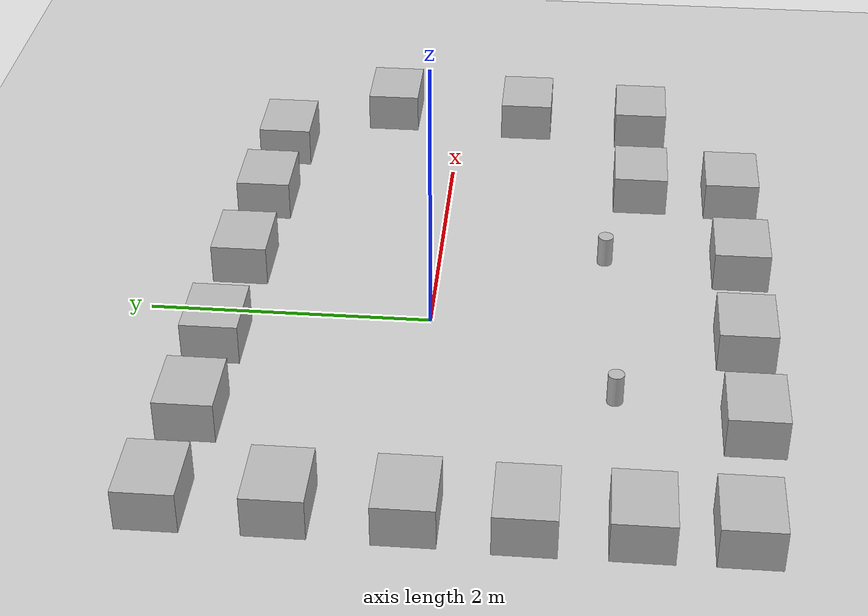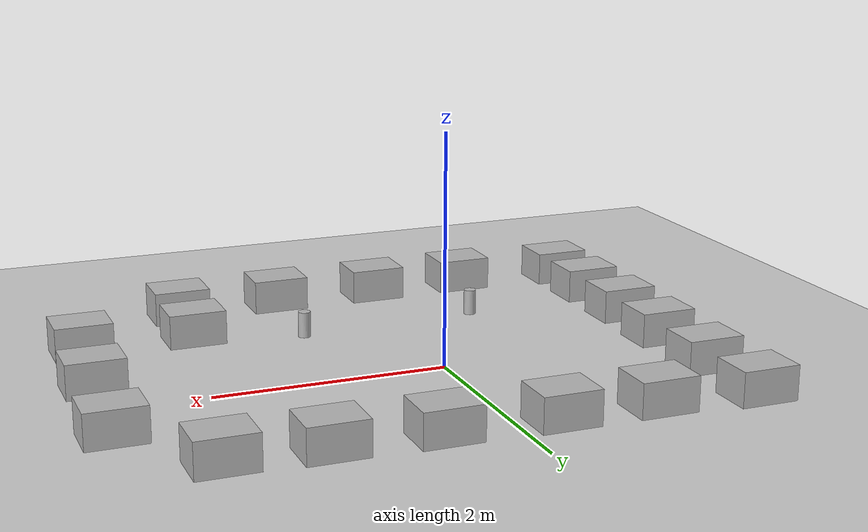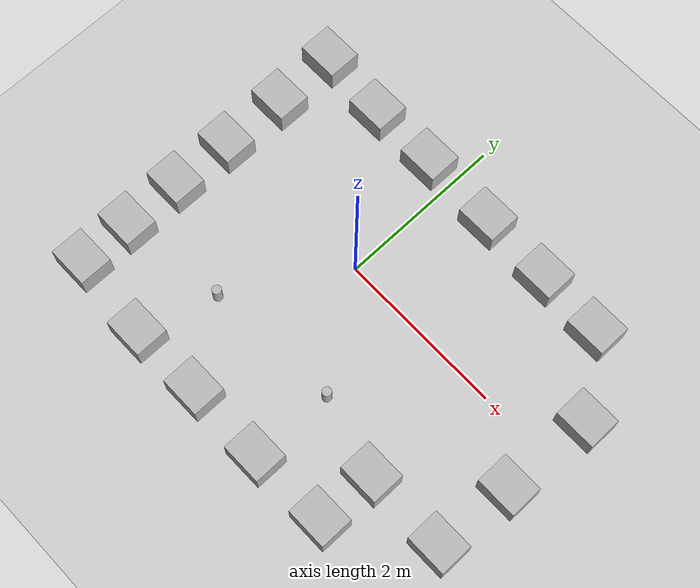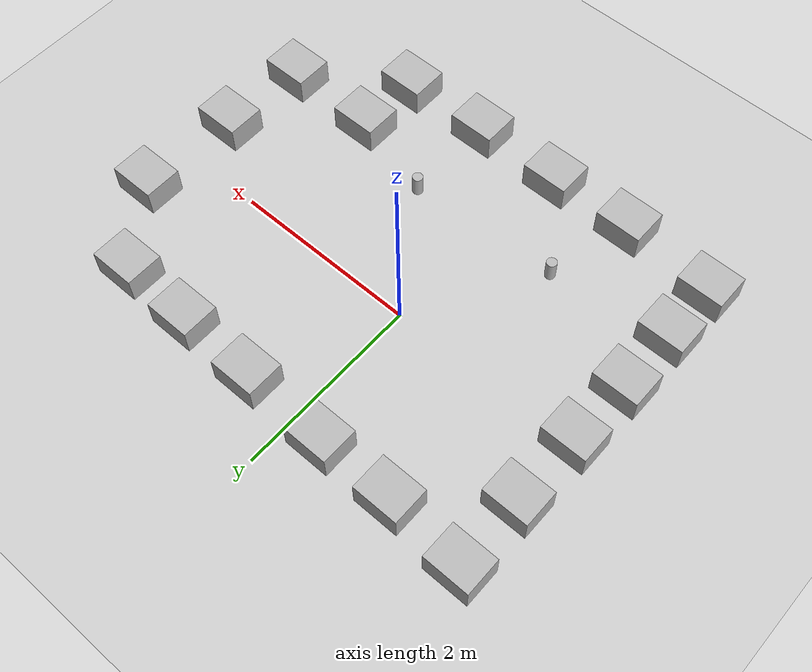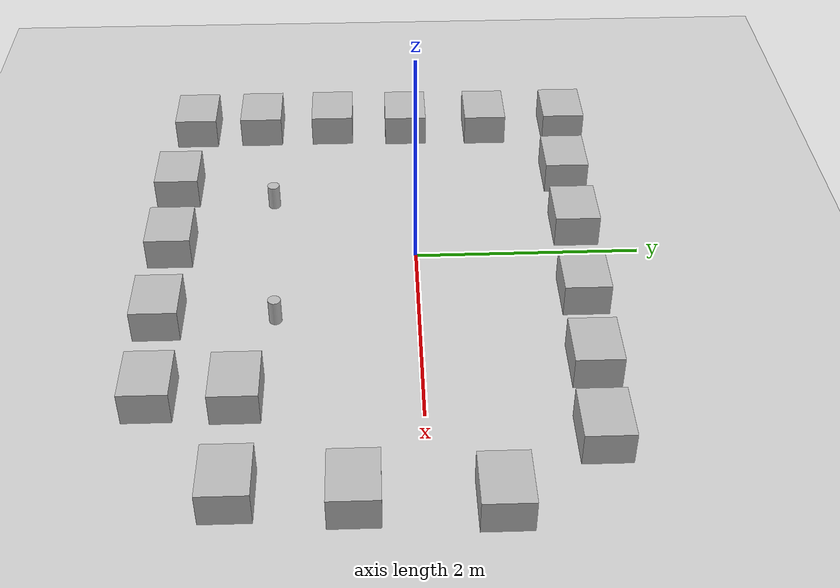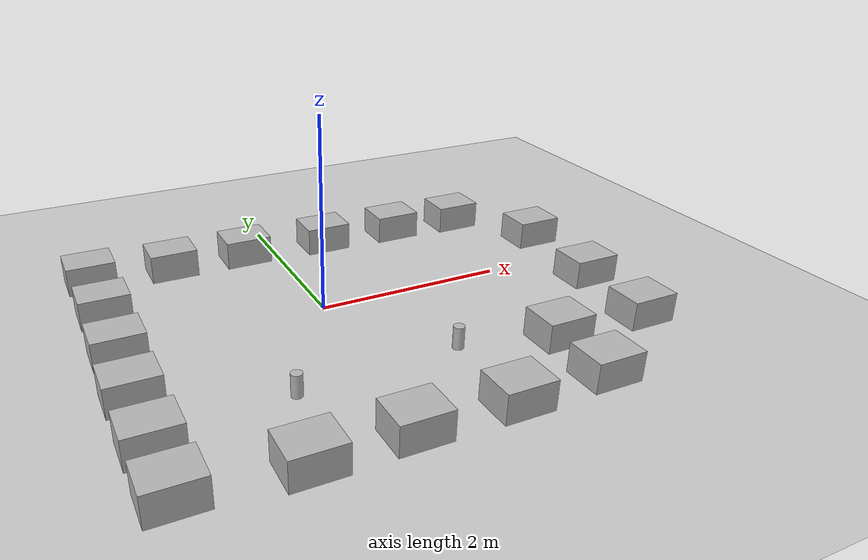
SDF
<sdf version="1.7">
 <world name="default">
  <light name="sun" type="directional">
   <pose>0 0 10 0 -0 0</pose>
   <diffuse>0.8 0.8 0.8 1</diffuse>
   <specular>0.2 0.2 0.2 1</specular>
   <attenuation>
    <range>1000</range>
    <constant>0.9</constant>
    <linear>0.01</linear>
    <quadratic>0.001</quadratic>
   </attenuation>
   <direction>-0.5 0.1 -0.9</direction>
   <spot><inner_angle>0</inner_angle><outer_angle>0</outer_angle><falloff>0</falloff></spot>
  </light>
  <model name="ground_plane">
   <static>1</static>
   <link name="link">
    <collision name="collision">
     <geometry><plane><normal>0 0 1</normal><size>100 100</size></plane></geometry>
     <surface>
      <contact><collide_bitmask>65535</collide_bitmask></contact>
      <friction><ode><mu>100</mu><mu2>50</mu2></ode></friction>
     </surface>
    </collision>
    <visual name="visual">
     <cast_shadows>0</cast_shadows>
     <geometry><plane><normal>0 0 1</normal><size>100 100</size></plane></geometry>
     <material>
      <script><uri>file://media/materials/scripts/gazebo.material</uri><name>Gazebo/Grey</name></script>
     </material>
    </visual>
   </link>
  </model>
  <gravity>0 0 -9.8</gravity>
  <magnetic_field>6e-06 2.3e-05 -4.2e-05</magnetic_field>
  <atmosphere type="adiabatic"/>
  <physics type="ode">
   <max_step_size>0.001</max_step_size>
   <real_time_factor>1</real_time_factor>
   <real_time_update_rate>1000</real_time_update_rate>
  </physics>
  <scene><ambient>0.4 0.4 0.4 1</ambient><background>0.7 0.7 0.7 1</background><shadows>1</shadows></scene>
  <audio><device>default</device></audio>
  <spherical_coordinates>
   <surface_model>EARTH_WGS84</surface_model>
   <latitude_deg>0</latitude_deg>
   <longitude_deg>0</longitude_deg>
   <elevation>0</elevation>
   <heading_deg>0</heading_deg>
  </spherical_coordinates>
  <model name="cardboard_box">
   <pose>-0.350638 1.46079 0.149 0 -0 0</pose>
   <link name="link">
    <inertial>
     <mass>2</mass>
     <inertia>
      <ixx>0.0416667</ixx>
      <ixy>0</ixy>
      <ixz>0</ixz>
      <iyy>0.0566667</iyy>
      <iyz>0</iyz>
      <izz>0.0683333</izz>
     </inertia>
    </inertial>
    <collision name="collision">
     <geometry><box><size>0.5 0.4 0.3</size></box></geometry>
     <surface>
      <friction><ode><mu>1</mu><mu2>1</mu2></ode></friction>
      <contact><ode><kp>1e+07</kp><kd>1</kd><min_depth>0.001</min_depth><max_vel>0.1</max_vel></ode></contact>
     </surface>
    </collision>
    <visual name="visual">
     <pose>0 0 -0.15 0 -0 0</pose>
     <geometry>
      <mesh><uri>model://cardboard_box/meshes/cardboard_box.dae</uri><scale>1.25932 1.00745 0.755591</scale></mesh>
     </geometry>
    </visual>
   </link>
  </model>
  <model name="cardboard_box_0">
   <pose>0.598653 1.42379 0.149 0 -0 0</pose>
   <link name="link">
    <inertial>
     <mass>2</mass>
     <inertia>
      <ixx>0.0416667</ixx>
      <ixy>0</ixy>
      <ixz>0</ixz>
      <iyy>0.0566667</iyy>
      <iyz>0</iyz>
      <izz>0.0683333</izz>
     </inertia>
    </inertial>
    <collision name="collision">
     <geometry><box><size>0.5 0.4 0.3</size></box></geometry>
     <surface>
      <friction><ode><mu>1</mu><mu2>1</mu2></ode></friction>
      <contact><ode><kp>1e+07</kp><kd>1</kd><min_depth>0.001</min_depth><max_vel>0.1</max_vel></ode></contact>
     </surface>
    </collision>
    <visual name="visual">
     <pose>0 0 -0.15 0 -0 0</pose>
     <geometry>
      <mesh><uri>model://cardboard_box/meshes/cardboard_box.dae</uri><scale>1.25932 1.00745 0.755591</scale></mesh>
     </geometry>
    </visual>
   </link>
  </model>
  <model name="cardboard_box_1">
   <pose>1.47743 1.39299 0.149 0 -0 0</pose>
   <link name="link">
    <inertial>
     <mass>2</mass>
     <inertia>
      <ixx>0.0416667</ixx>
      <ixy>0</ixy>
      <ixz>0</ixz>
      <iyy>0.0566667</iyy>
      <iyz>0</iyz>
      <izz>0.0683333</izz>
     </inertia>
    </inertial>
    <collision name="collision">
     <geometry><box><size>0.5 0.4 0.3</size></box></geometry>
     <surface>
      <friction><ode><mu>1</mu><mu2>1</mu2></ode></friction>
      <contact><ode><kp>1e+07</kp><kd>1</kd><min_depth>0.001</min_depth><max_vel>0.1</max_vel></ode></contact>
     </surface>
    </collision>
    <visual name="visual">
     <pose>0 0 -0.15 0 -0 0</pose>
     <geometry>
      <mesh><uri>model://cardboard_box/meshes/cardboard_box.dae</uri><scale>1.25932 1.00745 0.755591</scale></mesh>
     </geometry>
    </visual>
   </link>
  </model>
  <model name="cardboard_box_2">
   <pose>2.28377 1.35243 0.149 0 -0 0</pose>
   <link name="link">
    <inertial>
     <mass>2</mass>
     <inertia>
      <ixx>0.0416667</ixx>
      <ixy>0</ixy>
      <ixz>0</ixz>
      <iyy>0.0566667</iyy>
      <iyz>0</iyz>
      <izz>0.0683333</izz>
     </inertia>
    </inertial>
    <collision name="collision">
     <geometry><box><size>0.5 0.4 0.3</size></box></geometry>
     <surface>
      <friction><ode><mu>1</mu><mu2>1</mu2></ode></friction>
      <contact><ode><kp>1e+07</kp><kd>1</kd><min_depth>0.001</min_depth><max_vel>0.1</max_vel></ode></contact>
     </surface>
    </collision>
    <visual name="visual">
     <pose>0 0 -0.15 0 -0 0</pose>
     <geometry>
      <mesh><uri>model://cardboard_box/meshes/cardboard_box.dae</uri><scale>1.25932 1.00745 0.755591</scale></mesh>
     </geometry>
    </visual>
   </link>
  </model>
  <model name="cardboard_box_3">
   <pose>-1.18587 1.46653 0.149 0 -0 0</pose>
   <link name="link">
    <inertial>
     <mass>2</mass>
     <inertia>
      <ixx>0.0416667</ixx>
      <ixy>0</ixy>
      <ixz>0</ixz>
      <iyy>0.0566667</iyy>
      <iyz>0</iyz>
      <izz>0.0683333</izz>
     </inertia>
    </inertial>
    <collision name="collision">
     <geometry><box><size>0.5 0.4 0.3</size></box></geometry>
     <surface>
      <friction><ode><mu>1</mu><mu2>1</mu2></ode></friction>
      <contact><ode><kp>1e+07</kp><kd>1</kd><min_depth>0.001</min_depth><max_vel>0.1</max_vel></ode></contact>
     </surface>
    </collision>
    <visual name="visual">
     <pose>0 0 -0.15 0 -0 0</pose>
     <geometry>
      <mesh><uri>model://cardboard_box/meshes/cardboard_box.dae</uri><scale>1.25932 1.00745 0.755591</scale></mesh>
     </geometry>
    </visual>
   </link>
  </model>
  <model name="cardboard_box_4">
   <pose>-2.04023 1.53567 0.149 0 -0 0</pose>
   <link name="link">
    <inertial>
     <mass>2</mass>
     <inertia>
      <ixx>0.0416667</ixx>
      <ixy>0</ixy>
      <ixz>0</ixz>
      <iyy>0.0566667</iyy>
      <iyz>0</iyz>
      <izz>0.0683333</izz>
     </inertia>
    </inertial>
    <collision name="collision">
     <geometry><box><size>0.5 0.4 0.3</size></box></geometry>
     <surface>
      <friction><ode><mu>1</mu><mu2>1</mu2></ode></friction>
      <contact><ode><kp>1e+07</kp><kd>1</kd><min_depth>0.001</min_depth><max_vel>0.1</max_vel></ode></contact>
     </surface>
    </collision>
    <visual name="visual">
     <pose>0 0 -0.15 0 -0 0</pose>
     <geometry>
      <mesh><uri>model://cardboard_box/meshes/cardboard_box.dae</uri><scale>1.25932 1.00745 0.755591</scale></mesh>
     </geometry>
    </visual>
   </link>
  </model>
  <model name="cardboard_box_5">
   <pose>-2.03437 0.75368 0.149 0 -0 0</pose>
   <link name="link">
    <inertial>
     <mass>2</mass>
     <inertia>
      <ixx>0.0416667</ixx>
      <ixy>0</ixy>
      <ixz>0</ixz>
      <iyy>0.0566667</iyy>
      <iyz>0</iyz>
      <izz>0.0683333</izz>
     </inertia>
    </inertial>
    <collision name="collision">
     <geometry><box><size>0.5 0.4 0.3</size></box></geometry>
     <surface>
      <friction><ode><mu>1</mu><mu2>1</mu2></ode></friction>
      <contact><ode><kp>1e+07</kp><kd>1</kd><min_depth>0.001</min_depth><max_vel>0.1</max_vel></ode></contact>
     </surface>
    </collision>
    <visual name="visual">
     <pose>0 0 -0.15 0 -0 0</pose>
     <geometry>
      <mesh><uri>model://cardboard_box/meshes/cardboard_box.dae</uri><scale>1.25932 1.00745 0.755591</scale></mesh>
     </geometry>
    </visual>
   </link>
  </model>
  <model name="cardboard_box_6">
   <pose>-2.04774 -0.037163 0.149 0 -0 0</pose>
   <link name="link">
    <inertial>
     <mass>2</mass>
     <inertia>
      <ixx>0.0416667</ixx>
      <ixy>0</ixy>
      <ixz>0</ixz>
      <iyy>0.0566667</iyy>
      <iyz>0</iyz>
      <izz>0.0683333</izz>
     </inertia>
    </inertial>
    <collision name="collision">
     <geometry><box><size>0.5 0.4 0.3</size></box></geometry>
     <surface>
      <friction><ode><mu>1</mu><mu2>1</mu2></ode></friction>
      <contact><ode><kp>1e+07</kp><kd>1</kd><min_depth>0.001</min_depth><max_vel>0.1</max_vel></ode></contact>
     </surface>
    </collision>
    <visual name="visual">
     <pose>0 0 -0.15 0 -0 0</pose>
     <geometry>
      <mesh><uri>model://cardboard_box/meshes/cardboard_box.dae</uri><scale>1.25932 1.00745 0.755591</scale></mesh>
     </geometry>
    </visual>
   </link>
  </model>
  <model name="cardboard_box_7">
   <pose>-2.06834 -0.766609 0.149 0 -0 0</pose>
   <link name="link">
    <inertial>
     <mass>2</mass>
     <inertia>
      <ixx>0.0416667</ixx>
      <ixy>0</ixy>
      <ixz>0</ixz>
      <iyy>0.0566667</iyy>
      <iyz>0</iyz>
      <izz>0.0683333</izz>
     </inertia>
    </inertial>
    <collision name="collision">
     <geometry><box><size>0.5 0.4 0.3</size></box></geometry>
     <surface>
      <friction><ode><mu>1</mu><mu2>1</mu2></ode></friction>
      <contact><ode><kp>1e+07</kp><kd>1</kd><min_depth>0.001</min_depth><max_vel>0.1</max_vel></ode></contact>
     </surface>
    </collision>
    <visual name="visual">
     <pose>0 0 -0.15 0 -0 0</pose>
     <geometry>
      <mesh><uri>model://cardboard_box/meshes/cardboard_box.dae</uri><scale>1.25932 1.00745 0.755591</scale></mesh>
     </geometry>
    </visual>
   </link>
  </model>
  <model name="cardboard_box_8">
   <pose>-2.06365 -1.47094 0.149 0 -0 0</pose>
   <link name="link">
    <inertial>
     <mass>2</mass>
     <inertia>
      <ixx>0.0416667</ixx>
      <ixy>0</ixy>
      <ixz>0</ixz>
      <iyy>0.0566667</iyy>
      <iyz>0</iyz>
      <izz>0.0683333</izz>
     </inertia>
    </inertial>
    <collision name="collision">
     <geometry><box><size>0.5 0.4 0.3</size></box></geometry>
     <surface>
      <friction><ode><mu>1</mu><mu2>1</mu2></ode></friction>
      <contact><ode><kp>1e+07</kp><kd>1</kd><min_depth>0.001</min_depth><max_vel>0.1</max_vel></ode></contact>
     </surface>
    </collision>
    <visual name="visual">
     <pose>0 0 -0.15 0 -0 0</pose>
     <geometry>
      <mesh><uri>model://cardboard_box/meshes/cardboard_box.dae</uri><scale>1.25932 1.00745 0.755591</scale></mesh>
     </geometry>
    </visual>
   </link>
  </model>
  <model name="cardboard_box_9">
   <pose>-2.05956 -2.11212 0.149 0 -0 0</pose>
   <link name="link">
    <inertial>
     <mass>2</mass>
     <inertia>
      <ixx>0.0416667</ixx>
      <ixy>0</ixy>
      <ixz>0</ixz>
      <iyy>0.0566667</iyy>
      <iyz>0</iyz>
      <izz>0.0683333</izz>
     </inertia>
    </inertial>
    <collision name="collision">
     <geometry><box><size>0.5 0.4 0.3</size></box></geometry>
     <surface>
      <friction><ode><mu>1</mu><mu2>1</mu2></ode></friction>
      <contact><ode><kp>1e+07</kp><kd>1</kd><min_depth>0.001</min_depth><max_vel>0.1</max_vel></ode></contact>
     </surface>
    </collision>
    <visual name="visual">
     <pose>0 0 -0.15 0 -0 0</pose>
     <geometry>
      <mesh><uri>model://cardboard_box/meshes/cardboard_box.dae</uri><scale>1.25932 1.00745 0.755591</scale></mesh>
     </geometry>
    </visual>
   </link>
  </model>
  <model name="cardboard_box_10">
   <pose>-1.04318 -2.19998 0.149 0 -0 0</pose>
   <link name="link">
    <inertial>
     <mass>2</mass>
     <inertia>
      <ixx>0.0416667</ixx>
      <ixy>0</ixy>
      <ixz>0</ixz>
      <iyy>0.0566667</iyy>
      <iyz>0</iyz>
      <izz>0.0683333</izz>
     </inertia>
    </inertial>
    <collision name="collision">
     <geometry><box><size>0.5 0.4 0.3</size></box></geometry>
     <surface>
      <friction><ode><mu>1</mu><mu2>1</mu2></ode></friction>
      <contact><ode><kp>1e+07</kp><kd>1</kd><min_depth>0.001</min_depth><max_vel>0.1</max_vel></ode></contact>
     </surface>
    </collision>
    <visual name="visual">
     <pose>0 0 -0.15 0 -0 0</pose>
     <geometry>
      <mesh><uri>model://cardboard_box/meshes/cardboard_box.dae</uri><scale>1.25932 1.00745 0.755591</scale></mesh>
     </geometry>
    </visual>
   </link>
  </model>
  <model name="cardboard_box_11">
   <pose>-0.149804 -2.1852 0.149 0 -0 0</pose>
   <link name="link">
    <inertial>
     <mass>2</mass>
     <inertia>
      <ixx>0.0416667</ixx>
      <ixy>0</ixy>
      <ixz>0</ixz>
      <iyy>0.0566667</iyy>
      <iyz>0</iyz>
      <izz>0.0683333</izz>
     </inertia>
    </inertial>
    <collision name="collision">
     <geometry><box><size>0.5 0.4 0.3</size></box></geometry>
     <surface>
      <friction><ode><mu>1</mu><mu2>1</mu2></ode></friction>
      <contact><ode><kp>1e+07</kp><kd>1</kd><min_depth>0.001</min_depth><max_vel>0.1</max_vel></ode></contact>
     </surface>
    </collision>
    <visual name="visual">
     <pose>0 0 -0.15 0 -0 0</pose>
     <geometry>
      <mesh><uri>model://cardboard_box/meshes/cardboard_box.dae</uri><scale>1.25932 1.00745 0.755591</scale></mesh>
     </geometry>
    </visual>
   </link>
  </model>
  <model name="cardboard_box_12">
   <pose>0.807433 -2.19345 0.149 0 -0 0</pose>
   <link name="link">
    <inertial>
     <mass>2</mass>
     <inertia>
      <ixx>0.0416667</ixx>
      <ixy>0</ixy>
      <ixz>0</ixz>
      <iyy>0.0566667</iyy>
      <iyz>0</iyz>
      <izz>0.0683333</izz>
     </inertia>
    </inertial>
    <collision name="collision">
     <geometry><box><size>0.5 0.4 0.3</size></box></geometry>
     <surface>
      <friction><ode><mu>1</mu><mu2>1</mu2></ode></friction>
      <contact><ode><kp>1e+07</kp><kd>1</kd><min_depth>0.001</min_depth><max_vel>0.1</max_vel></ode></contact>
     </surface>
    </collision>
    <visual name="visual">
     <pose>0 0 -0.15 0 -0 0</pose>
     <geometry>
      <mesh><uri>model://cardboard_box/meshes/cardboard_box.dae</uri><scale>1.25932 1.00745 0.755591</scale></mesh>
     </geometry>
    </visual>
   </link>
  </model>
  <model name="cardboard_box_13">
   <pose>1.74888 -2.15998 0.149 0 -0 0</pose>
   <link name="link">
    <inertial>
     <mass>2</mass>
     <inertia>
      <ixx>0.0416667</ixx>
      <ixy>0</ixy>
      <ixz>0</ixz>
      <iyy>0.0566667</iyy>
      <iyz>0</iyz>
      <izz>0.0683333</izz>
     </inertia>
    </inertial>
    <collision name="collision">
     <geometry><box><size>0.5 0.4 0.3</size></box></geometry>
     <surface>
      <friction><ode><mu>1</mu><mu2>1</mu2></ode></friction>
      <contact><ode><kp>1e+07</kp><kd>1</kd><min_depth>0.001</min_depth><max_vel>0.1</max_vel></ode></contact>
     </surface>
    </collision>
    <visual name="visual">
     <pose>0 0 -0.15 0 -0 0</pose>
     <geometry>
      <mesh><uri>model://cardboard_box/meshes/cardboard_box.dae</uri><scale>1.25932 1.00745 0.755591</scale></mesh>
     </geometry>
    </visual>
   </link>
  </model>
  <model name="cardboard_box_14">
   <pose>1.78019 -1.47072 0.149 0 -0 0</pose>
   <link name="link">
    <inertial>
     <mass>2</mass>
     <inertia>
      <ixx>0.0416667</ixx>
      <ixy>0</ixy>
      <ixz>0</ixz>
      <iyy>0.0566667</iyy>
      <iyz>0</iyz>
      <izz>0.0683333</izz>
     </inertia>
    </inertial>
    <collision name="collision">
     <geometry><box><size>0.5 0.4 0.3</size></box></geometry>
     <surface>
      <friction><ode><mu>1</mu><mu2>1</mu2></ode></friction>
      <contact><ode><kp>1e+07</kp><kd>1</kd><min_depth>0.001</min_depth><max_vel>0.1</max_vel></ode></contact>
     </surface>
    </collision>
    <visual name="visual">
     <pose>0 0 -0.15 0 -0 0</pose>
     <geometry>
      <mesh><uri>model://cardboard_box/meshes/cardboard_box.dae</uri><scale>1.25932 1.00745 0.755591</scale></mesh>
     </geometry>
    </visual>
   </link>
  </model>
  <model name="cardboard_box_15">
   <pose>2.76376 -1.47361 0.149 0 -0 0</pose>
   <link name="link">
    <inertial>
     <mass>2</mass>
     <inertia>
      <ixx>0.0416667</ixx>
      <ixy>0</ixy>
      <ixz>0</ixz>
      <iyy>0.0566667</iyy>
      <iyz>0</iyz>
      <izz>0.0683333</izz>
     </inertia>
    </inertial>
    <collision name="collision">
     <geometry><box><size>0.5 0.4 0.3</size></box></geometry>
     <surface>
      <friction><ode><mu>1</mu><mu2>1</mu2></ode></friction>
      <contact><ode><kp>1e+07</kp><kd>1</kd><min_depth>0.001</min_depth><max_vel>0.1</max_vel></ode></contact>
     </surface>
    </collision>
    <visual name="visual">
     <pose>0 0 -0.15 0 -0 0</pose>
     <geometry>
      <mesh><uri>model://cardboard_box/meshes/cardboard_box.dae</uri><scale>1.25932 1.00745 0.755591</scale></mesh>
     </geometry>
    </visual>
   </link>
  </model>
  <model name="cardboard_box_16">
   <pose>2.83709 -0.547433 0.149 0 -0 0</pose>
   <link name="link">
    <inertial>
     <mass>2</mass>
     <inertia>
      <ixx>0.0416667</ixx>
      <ixy>0</ixy>
      <ixz>0</ixz>
      <iyy>0.0566667</iyy>
      <iyz>0</iyz>
      <izz>0.0683333</izz>
     </inertia>
    </inertial>
    <collision name="collision">
     <geometry><box><size>0.5 0.4 0.3</size></box></geometry>
     <surface>
      <friction><ode><mu>1</mu><mu2>1</mu2></ode></friction>
      <contact><ode><kp>1e+07</kp><kd>1</kd><min_depth>0.001</min_depth><max_vel>0.1</max_vel></ode></contact>
     </surface>
    </collision>
    <visual name="visual">
     <pose>0 0 -0.15 0 -0 0</pose>
     <geometry>
      <mesh><uri>model://cardboard_box/meshes/cardboard_box.dae</uri><scale>1.25932 1.00745 0.755591</scale></mesh>
     </geometry>
    </visual>
   </link>
  </model>
  <model name="cardboard_box_17">
   <pose>2.89832 0.545705 0.149 0 -0 0</pose>
   <link name="link">
    <inertial>
     <mass>2</mass>
     <inertia>
      <ixx>0.0416667</ixx>
      <ixy>0</ixy>
      <ixz>0</ixz>
      <iyy>0.0566667</iyy>
      <iyz>0</iyz>
      <izz>0.0683333</izz>
     </inertia>
    </inertial>
    <collision name="collision">
     <geometry><box><size>0.5 0.4 0.3</size></box></geometry>
     <surface>
      <friction><ode><mu>1</mu><mu2>1</mu2></ode></friction>
      <contact><ode><kp>1e+07</kp><kd>1</kd><min_depth>0.001</min_depth><max_vel>0.1</max_vel></ode></contact>
     </surface>
    </collision>
    <visual name="visual">
     <pose>0 0 -0.15 0 -0 0</pose>
     <geometry>
      <mesh><uri>model://cardboard_box/meshes/cardboard_box.dae</uri><scale>1.25932 1.00745 0.755591</scale></mesh>
     </geometry>
    </visual>
   </link>
  </model>
  <model name="beer">
   <link name="link">
    <pose>0 0 0.115 0 -0 0</pose>
    <inertial>
     <mass>0.39</mass>
     <inertia><ixx>0.00058</ixx><ixy>0</ixy><ixz>0</ixz><iyy>0.00058</iyy><iyz>0</iyz><izz>0.00019</izz></inertia>
    </inertial>
    <collision name="collision">
     <geometry><cylinder><radius>0.055</radius><length>0.23</length></cylinder></geometry>
    </collision>
    <visual name="visual">
     <geometry><cylinder><radius>0.055</radius><length>0.23</length></cylinder></geometry>
     <material>
      <script>
       <uri>model://beer/materials/scripts</uri>
       <uri>model://beer/materials/textures</uri>
       <name>Beer/Diffuse</name>
      </script>
     </material>
    </visual>
   </link>
   <pose>0.838488 -1.21308 -2e-06 1e-06 -0 -5e-06</pose>
  </model>
  <model name="beer_0">
   <link name="link">
    <pose>0 0 0.115 0 -0 0</pose>
    <inertial>
     <mass>0.39</mass>
     <inertia><ixx>0.00058</ixx><ixy>0</ixy><ixz>0</ixz><iyy>0.00058</iyy><iyz>0</iyz><izz>0.00019</izz></inertia>
    </inertial>
    <collision name="collision">
     <geometry><cylinder><radius>0.055</radius><length>0.23</length></cylinder></geometry>
    </collision>
    <visual name="visual">
     <geometry><cylinder><radius>0.055</radius><length>0.23</length></cylinder></geometry>
     <material>
      <script>
       <uri>model://beer/materials/scripts</uri>
       <uri>model://beer/materials/textures</uri>
       <name>Beer/Diffuse</name>
      </script>
     </material>
    </visual>
   </link>
   <pose>-0.794745 -1.2985 -7e-06 -0 -0 -4e-06</pose>
  </model>
 </world>
</sdf>
